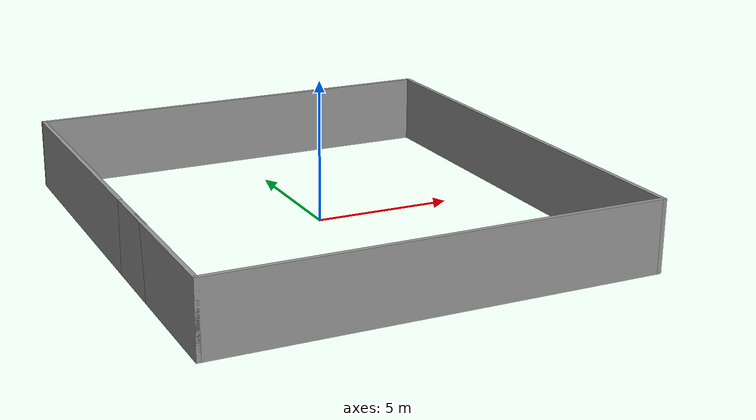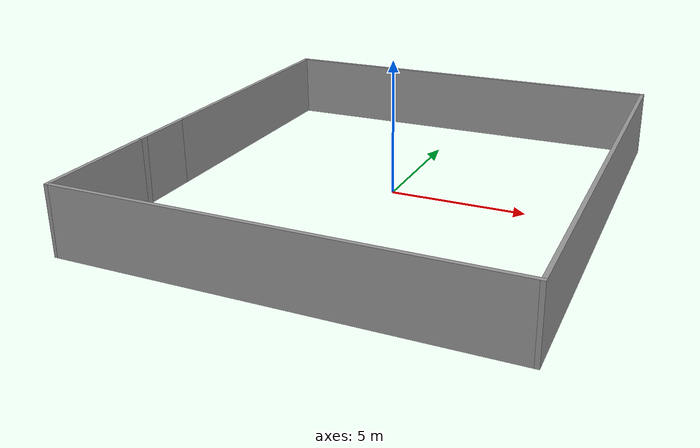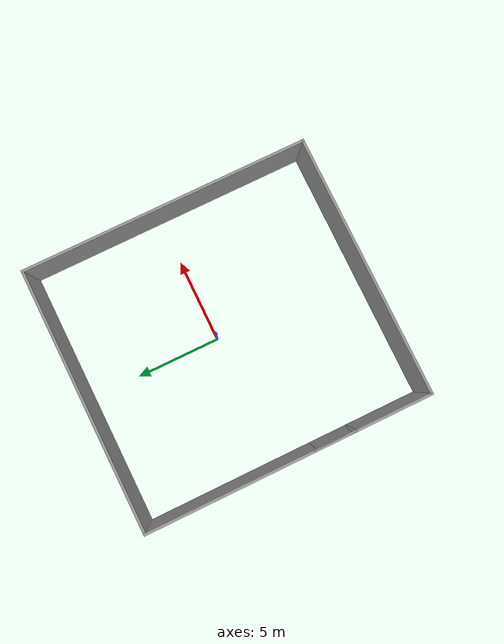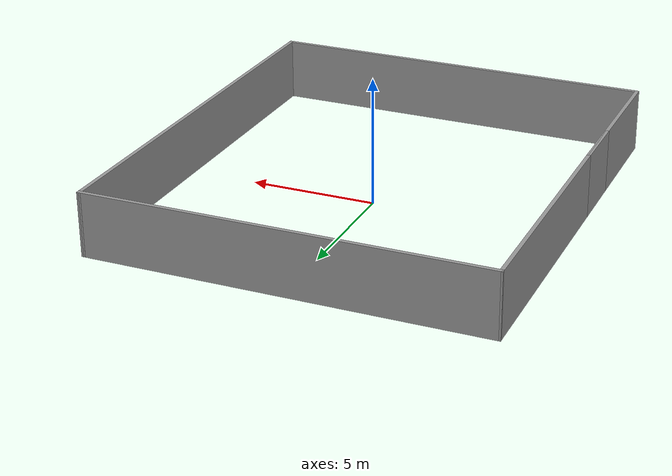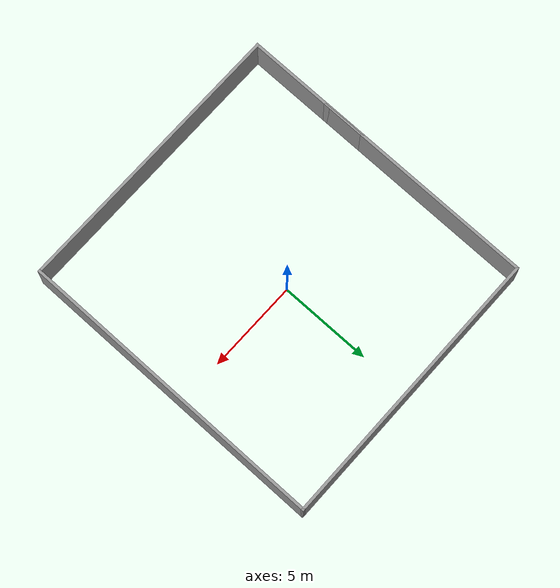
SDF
<?xml version='1.0'?>
<sdf version='1.7'>
  <model name='walls'>
    <pose>-0.015 -0.494636 0 0 -0 0</pose>
    <link name='Wall_0'>
      <collision name='Wall_0_Collision'>
        <geometry>
          <box>
            <size>2.5 0.15 2.5</size>
          </box>
        </geometry>
        <pose>0 0 1.25 0 -0 0</pose>
      </collision>
      <visual name='Wall_0_Visual'>
        <pose>0 0 1.25 0 -0 0</pose>
        <geometry>
          <box>
            <size>2.5 0.15 2.5</size>
          </box>
        </geometry>
        <material>
          <script>
            <uri>file://media/materials/scripts/gazebo.material</uri>
            <name>Gazebo/Grey</name>
          </script>
          <ambient>1 1 1 1</ambient>
        </material>
        <meta>
          <layer>0</layer>
        </meta>
      </visual>
      <pose>-7.675 -2.75036 0 0 -0 1.5708</pose>
    </link>
    <link name='Wall_1'>
      <collision name='Wall_1_Collision'>
        <geometry>
          <box>
            <size>7 0.15 2.5</size>
          </box>
        </geometry>
        <pose>0 0 1.25 0 -0 0</pose>
      </collision>
      <visual name='Wall_1_Visual'>
        <pose>0 0 1.25 0 -0 0</pose>
        <geometry>
          <box>
            <size>7 0.15 2.5</size>
          </box>
        </geometry>
        <material>
          <script>
            <uri>file://media/materials/scripts/gazebo.material</uri>
            <name>Gazebo/Grey</name>
          </script>
          <ambient>1 1 1 1</ambient>
        </material>
        <meta>
          <layer>0</layer>
        </meta>
      </visual>
      <pose>-7.675 -5.00036 0 0 -0 -1.5708</pose>
    </link>
    <link name='Wall_2'>
      <collision name='Wall_2_Collision'>
        <geometry>
          <box>
            <size>15.5 0.15 2.5</size>
          </box>
        </geometry>
        <pose>0 0 1.25 0 -0 0</pose>
      </collision>
      <visual name='Wall_2_Visual'>
        <pose>0 0 1.25 0 -0 0</pose>
        <geometry>
          <box>
            <size>15.5 0.15 2.5</size>
          </box>
        </geometry>
        <material>
          <script>
            <uri>file://media/materials/scripts/gazebo.material</uri>
            <name>Gazebo/Grey</name>
          </script>
          <ambient>1 1 1 1</ambient>
        </material>
        <meta>
          <layer>0</layer>
        </meta>
      </visual>
      <pose>-0 -8.42536 0 0 -0 0</pose>
    </link>
    <link name='Wall_3'>
      <collision name='Wall_3_Collision'>
        <geometry>
          <box>
            <size>17 0.15 2.5</size>
          </box>
        </geometry>
        <pose>0 0 1.25 0 -0 0</pose>
      </collision>
      <visual name='Wall_3_Visual'>
        <pose>0 0 1.25 0 -0 0</pose>
        <geometry>
          <box>
            <size>17 0.15 2.5</size>
          </box>
        </geometry>
        <material>
          <script>
            <uri>file://media/materials/scripts/gazebo.material</uri>
            <name>Gazebo/Grey</name>
          </script>
          <ambient>1 1 1 1</ambient>
        </material>
        <meta>
          <layer>0</layer>
        </meta>
      </visual>
      <pose>7.675 -0.000364 0 0 -0 1.5708</pose>
    </link>
    <link name='Wall_6'>
      <collision name='Wall_6_Collision'>
        <geometry>
          <box>
            <size>10 0.15 2.5</size>
          </box>
        </geometry>
        <pose>0 0 1.25 0 -0 0</pose>
      </collision>
      <visual name='Wall_6_Visual'>
        <pose>0 0 1.25 0 -0 0</pose>
        <geometry>
          <box>
            <size>10 0.15 2.5</size>
          </box>
        </geometry>
        <material>
          <script>
            <uri>file://media/materials/scripts/gazebo.material</uri>
            <name>Gazebo/Grey</name>
          </script>
          <ambient>1 1 1 1</ambient>
        </material>
        <meta>
          <layer>0</layer>
        </meta>
      </visual>
      <pose>-7.675 3.34964 0 0 -0 1.5708</pose>
    </link>
    <link name='Wall_7'>
      <collision name='Wall_7_Collision'>
        <geometry>
          <box>
            <size>15.5007 0.15 2.5</size>
          </box>
        </geometry>
        <pose>0 0 1.25 0 -0 0</pose>
      </collision>
      <visual name='Wall_7_Visual'>
        <pose>0 0 1.25 0 -0 0</pose>
        <geometry>
          <box>
            <size>15.5007 0.15 2.5</size>
          </box>
        </geometry>
        <material>
          <script>
            <uri>file://media/materials/scripts/gazebo.material</uri>
            <name>Gazebo/Grey</name>
          </script>
          <ambient>1 1 1 1</ambient>
        </material>
        <meta>
          <layer>0</layer>
        </meta>
      </visual>
      <pose>-0 8.34964 0 0 -0 0.009772</pose>
    </link>
    <static>1</static>
  </model>
</sdf>
